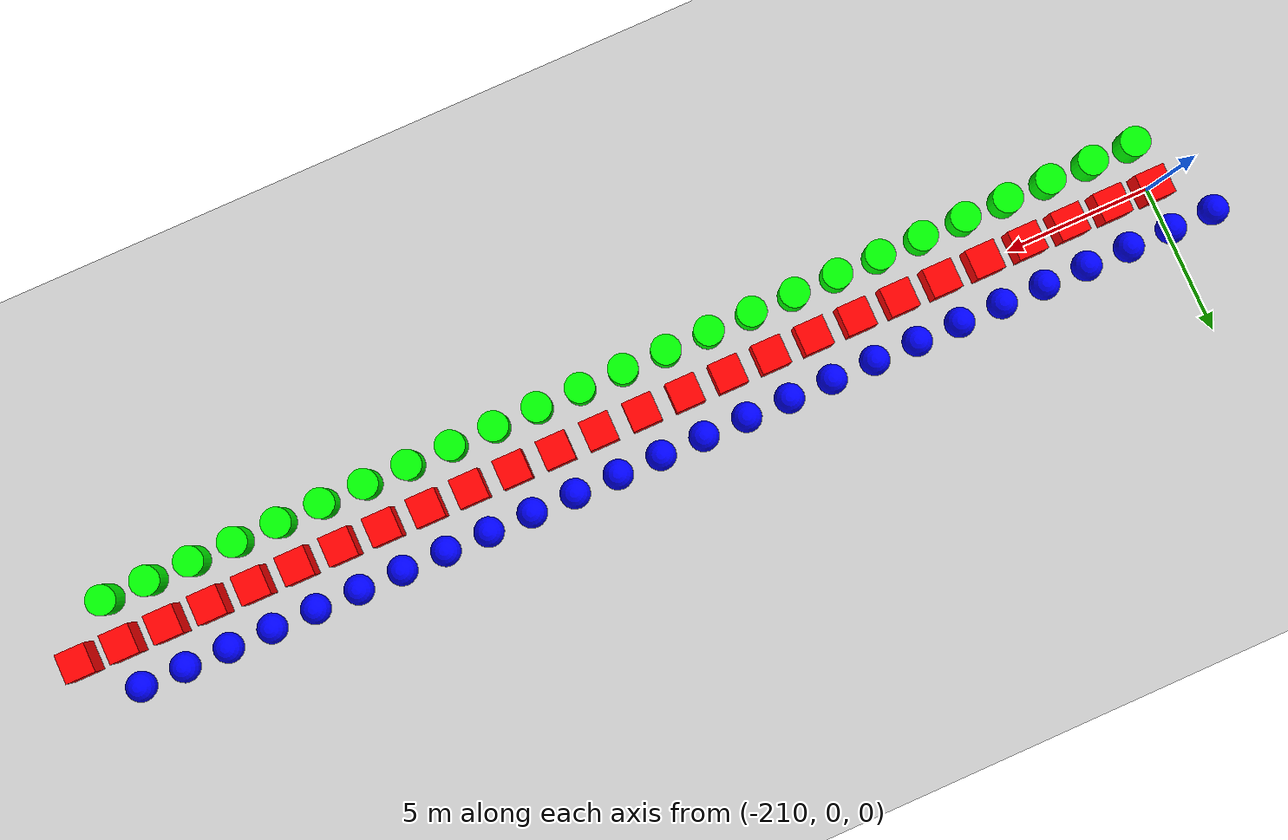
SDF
<sdf version="1.6">
 <world name="shapes">
  <model name="ground_plane">
   <static>true</static>
   <link name="link">
    <collision name="collision">
     <geometry><plane><normal>0 0 1</normal><size>100 100</size></plane></geometry>
    </collision>
    <visual name="visual">
     <geometry><plane><normal>0 0 1</normal><size>100 100</size></plane></geometry>
     <material>
      <ambient>0.8 0.8 0.8 1</ambient>
      <diffuse>0.8 0.8 0.8 1</diffuse>
      <specular>0.8 0.8 0.8 1</specular>
     </material>
    </visual>
   </link>
  </model>
  <model name="sphere_359">
   <static>false</static>
   <pose>-211.5 1.5 0.5 0 0 0</pose>
   <link name="sphere_link">
    <inertial>
     <inertia><ixx>3</ixx><ixy>0</ixy><ixz>0</ixz><iyy>3</iyy><iyz>0</iyz><izz>3</izz></inertia>
     <mass>3.0</mass>
    </inertial>
    <collision name="sphere_collision"><geometry><sphere><radius>0.5</radius></sphere></geometry></collision>
    <visual name="sphere_visual">
     <geometry><sphere><radius>0.5</radius></sphere></geometry>
     <material><ambient>0 0 1 1</ambient><diffuse>0 0 1 1</diffuse><specular>0 0 1 1</specular></material>
    </visual>
   </link>
  </model>
  <model name="box_360">
   <static>false</static>
   <pose>-210.0 0 0.5 0 0 0</pose>
   <link name="box_link">
    <inertial>
     <inertia><ixx>1</ixx><ixy>0</ixy><ixz>0</ixz><iyy>1</iyy><iyz>0</iyz><izz>1</izz></inertia>
     <mass>1.0</mass>
    </inertial>
    <collision name="box_collision"><geometry><box><size>1 1 1</size></box></geometry></collision>
    <visual name="box_visual">
     <geometry><box><size>1 1 1</size></box></geometry>
     <material><ambient>1 0 0 1</ambient><diffuse>1 0 0 1</diffuse><specular>1 0 0 1</specular></material>
    </visual>
   </link>
  </model>
  <model name="cylinder_360">
   <static>false</static>
   <pose>-210.0 -1.5 0.5 0 0 0</pose>
   <link name="cylinder_link">
    <inertial>
     <inertia><ixx>2</ixx><ixy>0</ixy><ixz>0</ixz><iyy>2</iyy><iyz>0</iyz><izz>2</izz></inertia>
     <mass>2.0</mass>
    </inertial>
    <collision name="cylinder_collision">
     <geometry><cylinder><radius>0.5</radius><length>1.0</length></cylinder></geometry>
    </collision>
    <visual name="cylinder_visual">
     <geometry><cylinder><radius>0.5</radius><length>1.0</length></cylinder></geometry>
     <material><ambient>0 1 0 1</ambient><diffuse>0 1 0 1</diffuse><specular>0 1 0 1</specular></material>
    </visual>
   </link>
  </model>
  <model name="sphere_360">
   <static>false</static>
   <pose>-210.0 1.5 0.5 0 0 0</pose>
   <link name="sphere_link">
    <inertial>
     <inertia><ixx>3</ixx><ixy>0</ixy><ixz>0</ixz><iyy>3</iyy><iyz>0</iyz><izz>3</izz></inertia>
     <mass>3.0</mass>
    </inertial>
    <collision name="sphere_collision"><geometry><sphere><radius>0.5</radius></sphere></geometry></collision>
    <visual name="sphere_visual">
     <geometry><sphere><radius>0.5</radius></sphere></geometry>
     <material><ambient>0 0 1 1</ambient><diffuse>0 0 1 1</diffuse><specular>0 0 1 1</specular></material>
    </visual>
   </link>
  </model>
  <model name="box_361">
   <static>false</static>
   <pose>-208.5 0 0.5 0 0 0</pose>
   <link name="box_link">
    <inertial>
     <inertia><ixx>1</ixx><ixy>0</ixy><ixz>0</ixz><iyy>1</iyy><iyz>0</iyz><izz>1</izz></inertia>
     <mass>1.0</mass>
    </inertial>
    <collision name="box_collision"><geometry><box><size>1 1 1</size></box></geometry></collision>
    <visual name="box_visual">
     <geometry><box><size>1 1 1</size></box></geometry>
     <material><ambient>1 0 0 1</ambient><diffuse>1 0 0 1</diffuse><specular>1 0 0 1</specular></material>
    </visual>
   </link>
  </model>
  <model name="cylinder_361">
   <static>false</static>
   <pose>-208.5 -1.5 0.5 0 0 0</pose>
   <link name="cylinder_link">
    <inertial>
     <inertia><ixx>2</ixx><ixy>0</ixy><ixz>0</ixz><iyy>2</iyy><iyz>0</iyz><izz>2</izz></inertia>
     <mass>2.0</mass>
    </inertial>
    <collision name="cylinder_collision">
     <geometry><cylinder><radius>0.5</radius><length>1.0</length></cylinder></geometry>
    </collision>
    <visual name="cylinder_visual">
     <geometry><cylinder><radius>0.5</radius><length>1.0</length></cylinder></geometry>
     <material><ambient>0 1 0 1</ambient><diffuse>0 1 0 1</diffuse><specular>0 1 0 1</specular></material>
    </visual>
   </link>
  </model>
  <model name="sphere_361">
   <static>false</static>
   <pose>-208.5 1.5 0.5 0 0 0</pose>
   <link name="sphere_link">
    <inertial>
     <inertia><ixx>3</ixx><ixy>0</ixy><ixz>0</ixz><iyy>3</iyy><iyz>0</iyz><izz>3</izz></inertia>
     <mass>3.0</mass>
    </inertial>
    <collision name="sphere_collision"><geometry><sphere><radius>0.5</radius></sphere></geometry></collision>
    <visual name="sphere_visual">
     <geometry><sphere><radius>0.5</radius></sphere></geometry>
     <material><ambient>0 0 1 1</ambient><diffuse>0 0 1 1</diffuse><specular>0 0 1 1</specular></material>
    </visual>
   </link>
  </model>
  <model name="box_362">
   <static>false</static>
   <pose>-207.0 0 0.5 0 0 0</pose>
   <link name="box_link">
    <inertial>
     <inertia><ixx>1</ixx><ixy>0</ixy><ixz>0</ixz><iyy>1</iyy><iyz>0</iyz><izz>1</izz></inertia>
     <mass>1.0</mass>
    </inertial>
    <collision name="box_collision"><geometry><box><size>1 1 1</size></box></geometry></collision>
    <visual name="box_visual">
     <geometry><box><size>1 1 1</size></box></geometry>
     <material><ambient>1 0 0 1</ambient><diffuse>1 0 0 1</diffuse><specular>1 0 0 1</specular></material>
    </visual>
   </link>
  </model>
  <model name="cylinder_362">
   <static>false</static>
   <pose>-207.0 -1.5 0.5 0 0 0</pose>
   <link name="cylinder_link">
    <inertial>
     <inertia><ixx>2</ixx><ixy>0</ixy><ixz>0</ixz><iyy>2</iyy><iyz>0</iyz><izz>2</izz></inertia>
     <mass>2.0</mass>
    </inertial>
    <collision name="cylinder_collision">
     <geometry><cylinder><radius>0.5</radius><length>1.0</length></cylinder></geometry>
    </collision>
    <visual name="cylinder_visual">
     <geometry><cylinder><radius>0.5</radius><length>1.0</length></cylinder></geometry>
     <material><ambient>0 1 0 1</ambient><diffuse>0 1 0 1</diffuse><specular>0 1 0 1</specular></material>
    </visual>
   </link>
  </model>
  <model name="sphere_362">
   <static>false</static>
   <pose>-207.0 1.5 0.5 0 0 0</pose>
   <link name="sphere_link">
    <inertial>
     <inertia><ixx>3</ixx><ixy>0</ixy><ixz>0</ixz><iyy>3</iyy><iyz>0</iyz><izz>3</izz></inertia>
     <mass>3.0</mass>
    </inertial>
    <collision name="sphere_collision"><geometry><sphere><radius>0.5</radius></sphere></geometry></collision>
    <visual name="sphere_visual">
     <geometry><sphere><radius>0.5</radius></sphere></geometry>
     <material><ambient>0 0 1 1</ambient><diffuse>0 0 1 1</diffuse><specular>0 0 1 1</specular></material>
    </visual>
   </link>
  </model>
  <model name="box_363">
   <static>false</static>
   <pose>-205.5 0 0.5 0 0 0</pose>
   <link name="box_link">
    <inertial>
     <inertia><ixx>1</ixx><ixy>0</ixy><ixz>0</ixz><iyy>1</iyy><iyz>0</iyz><izz>1</izz></inertia>
     <mass>1.0</mass>
    </inertial>
    <collision name="box_collision"><geometry><box><size>1 1 1</size></box></geometry></collision>
    <visual name="box_visual">
     <geometry><box><size>1 1 1</size></box></geometry>
     <material><ambient>1 0 0 1</ambient><diffuse>1 0 0 1</diffuse><specular>1 0 0 1</specular></material>
    </visual>
   </link>
  </model>
  <model name="cylinder_363">
   <static>false</static>
   <pose>-205.5 -1.5 0.5 0 0 0</pose>
   <link name="cylinder_link">
    <inertial>
     <inertia><ixx>2</ixx><ixy>0</ixy><ixz>0</ixz><iyy>2</iyy><iyz>0</iyz><izz>2</izz></inertia>
     <mass>2.0</mass>
    </inertial>
    <collision name="cylinder_collision">
     <geometry><cylinder><radius>0.5</radius><length>1.0</length></cylinder></geometry>
    </collision>
    <visual name="cylinder_visual">
     <geometry><cylinder><radius>0.5</radius><length>1.0</length></cylinder></geometry>
     <material><ambient>0 1 0 1</ambient><diffuse>0 1 0 1</diffuse><specular>0 1 0 1</specular></material>
    </visual>
   </link>
  </model>
  <model name="sphere_363">
   <static>false</static>
   <pose>-205.5 1.5 0.5 0 0 0</pose>
   <link name="sphere_link">
    <inertial>
     <inertia><ixx>3</ixx><ixy>0</ixy><ixz>0</ixz><iyy>3</iyy><iyz>0</iyz><izz>3</izz></inertia>
     <mass>3.0</mass>
    </inertial>
    <collision name="sphere_collision"><geometry><sphere><radius>0.5</radius></sphere></geometry></collision>
    <visual name="sphere_visual">
     <geometry><sphere><radius>0.5</radius></sphere></geometry>
     <material><ambient>0 0 1 1</ambient><diffuse>0 0 1 1</diffuse><specular>0 0 1 1</specular></material>
    </visual>
   </link>
  </model>
  <model name="box_364">
   <static>false</static>
   <pose>-204.0 0 0.5 0 0 0</pose>
   <link name="box_link">
    <inertial>
     <inertia><ixx>1</ixx><ixy>0</ixy><ixz>0</ixz><iyy>1</iyy><iyz>0</iyz><izz>1</izz></inertia>
     <mass>1.0</mass>
    </inertial>
    <collision name="box_collision"><geometry><box><size>1 1 1</size></box></geometry></collision>
    <visual name="box_visual">
     <geometry><box><size>1 1 1</size></box></geometry>
     <material><ambient>1 0 0 1</ambient><diffuse>1 0 0 1</diffuse><specular>1 0 0 1</specular></material>
    </visual>
   </link>
  </model>
  <model name="cylinder_364">
   <static>false</static>
   <pose>-204.0 -1.5 0.5 0 0 0</pose>
   <link name="cylinder_link">
    <inertial>
     <inertia><ixx>2</ixx><ixy>0</ixy><ixz>0</ixz><iyy>2</iyy><iyz>0</iyz><izz>2</izz></inertia>
     <mass>2.0</mass>
    </inertial>
    <collision name="cylinder_collision">
     <geometry><cylinder><radius>0.5</radius><length>1.0</length></cylinder></geometry>
    </collision>
    <visual name="cylinder_visual">
     <geometry><cylinder><radius>0.5</radius><length>1.0</length></cylinder></geometry>
     <material><ambient>0 1 0 1</ambient><diffuse>0 1 0 1</diffuse><specular>0 1 0 1</specular></material>
    </visual>
   </link>
  </model>
  <model name="sphere_364">
   <static>false</static>
   <pose>-204.0 1.5 0.5 0 0 0</pose>
   <link name="sphere_link">
    <inertial>
     <inertia><ixx>3</ixx><ixy>0</ixy><ixz>0</ixz><iyy>3</iyy><iyz>0</iyz><izz>3</izz></inertia>
     <mass>3.0</mass>
    </inertial>
    <collision name="sphere_collision"><geometry><sphere><radius>0.5</radius></sphere></geometry></collision>
    <visual name="sphere_visual">
     <geometry><sphere><radius>0.5</radius></sphere></geometry>
     <material><ambient>0 0 1 1</ambient><diffuse>0 0 1 1</diffuse><specular>0 0 1 1</specular></material>
    </visual>
   </link>
  </model>
  <model name="box_365">
   <static>false</static>
   <pose>-202.5 0 0.5 0 0 0</pose>
   <link name="box_link">
    <inertial>
     <inertia><ixx>1</ixx><ixy>0</ixy><ixz>0</ixz><iyy>1</iyy><iyz>0</iyz><izz>1</izz></inertia>
     <mass>1.0</mass>
    </inertial>
    <collision name="box_collision"><geometry><box><size>1 1 1</size></box></geometry></collision>
    <visual name="box_visual">
     <geometry><box><size>1 1 1</size></box></geometry>
     <material><ambient>1 0 0 1</ambient><diffuse>1 0 0 1</diffuse><specular>1 0 0 1</specular></material>
    </visual>
   </link>
  </model>
  <model name="cylinder_365">
   <static>false</static>
   <pose>-202.5 -1.5 0.5 0 0 0</pose>
   <link name="cylinder_link">
    <inertial>
     <inertia><ixx>2</ixx><ixy>0</ixy><ixz>0</ixz><iyy>2</iyy><iyz>0</iyz><izz>2</izz></inertia>
     <mass>2.0</mass>
    </inertial>
    <collision name="cylinder_collision">
     <geometry><cylinder><radius>0.5</radius><length>1.0</length></cylinder></geometry>
    </collision>
    <visual name="cylinder_visual">
     <geometry><cylinder><radius>0.5</radius><length>1.0</length></cylinder></geometry>
     <material><ambient>0 1 0 1</ambient><diffuse>0 1 0 1</diffuse><specular>0 1 0 1</specular></material>
    </visual>
   </link>
  </model>
  <model name="sphere_365">
   <static>false</static>
   <pose>-202.5 1.5 0.5 0 0 0</pose>
   <link name="sphere_link">
    <inertial>
     <inertia><ixx>3</ixx><ixy>0</ixy><ixz>0</ixz><iyy>3</iyy><iyz>0</iyz><izz>3</izz></inertia>
     <mass>3.0</mass>
    </inertial>
    <collision name="sphere_collision"><geometry><sphere><radius>0.5</radius></sphere></geometry></collision>
    <visual name="sphere_visual">
     <geometry><sphere><radius>0.5</radius></sphere></geometry>
     <material><ambient>0 0 1 1</ambient><diffuse>0 0 1 1</diffuse><specular>0 0 1 1</specular></material>
    </visual>
   </link>
  </model>
  <model name="box_366">
   <static>false</static>
   <pose>-201.0 0 0.5 0 0 0</pose>
   <link name="box_link">
    <inertial>
     <inertia><ixx>1</ixx><ixy>0</ixy><ixz>0</ixz><iyy>1</iyy><iyz>0</iyz><izz>1</izz></inertia>
     <mass>1.0</mass>
    </inertial>
    <collision name="box_collision"><geometry><box><size>1 1 1</size></box></geometry></collision>
    <visual name="box_visual">
     <geometry><box><size>1 1 1</size></box></geometry>
     <material><ambient>1 0 0 1</ambient><diffuse>1 0 0 1</diffuse><specular>1 0 0 1</specular></material>
    </visual>
   </link>
  </model>
  <model name="cylinder_366">
   <static>false</static>
   <pose>-201.0 -1.5 0.5 0 0 0</pose>
   <link name="cylinder_link">
    <inertial>
     <inertia><ixx>2</ixx><ixy>0</ixy><ixz>0</ixz><iyy>2</iyy><iyz>0</iyz><izz>2</izz></inertia>
     <mass>2.0</mass>
    </inertial>
    <collision name="cylinder_collision">
     <geometry><cylinder><radius>0.5</radius><length>1.0</length></cylinder></geometry>
    </collision>
    <visual name="cylinder_visual">
     <geometry><cylinder><radius>0.5</radius><length>1.0</length></cylinder></geometry>
     <material><ambient>0 1 0 1</ambient><diffuse>0 1 0 1</diffuse><specular>0 1 0 1</specular></material>
    </visual>
   </link>
  </model>
  <model name="sphere_366">
   <static>false</static>
   <pose>-201.0 1.5 0.5 0 0 0</pose>
   <link name="sphere_link">
    <inertial>
     <inertia><ixx>3</ixx><ixy>0</ixy><ixz>0</ixz><iyy>3</iyy><iyz>0</iyz><izz>3</izz></inertia>
     <mass>3.0</mass>
    </inertial>
    <collision name="sphere_collision"><geometry><sphere><radius>0.5</radius></sphere></geometry></collision>
    <visual name="sphere_visual">
     <geometry><sphere><radius>0.5</radius></sphere></geometry>
     <material><ambient>0 0 1 1</ambient><diffuse>0 0 1 1</diffuse><specular>0 0 1 1</specular></material>
    </visual>
   </link>
  </model>
  <model name="box_367">
   <static>false</static>
   <pose>-199.5 0 0.5 0 0 0</pose>
   <link name="box_link">
    <inertial>
     <inertia><ixx>1</ixx><ixy>0</ixy><ixz>0</ixz><iyy>1</iyy><iyz>0</iyz><izz>1</izz></inertia>
     <mass>1.0</mass>
    </inertial>
    <collision name="box_collision"><geometry><box><size>1 1 1</size></box></geometry></collision>
    <visual name="box_visual">
     <geometry><box><size>1 1 1</size></box></geometry>
     <material><ambient>1 0 0 1</ambient><diffuse>1 0 0 1</diffuse><specular>1 0 0 1</specular></material>
    </visual>
   </link>
  </model>
  <model name="cylinder_367">
   <static>false</static>
   <pose>-199.5 -1.5 0.5 0 0 0</pose>
   <link name="cylinder_link">
    <inertial>
     <inertia><ixx>2</ixx><ixy>0</ixy><ixz>0</ixz><iyy>2</iyy><iyz>0</iyz><izz>2</izz></inertia>
     <mass>2.0</mass>
    </inertial>
    <collision name="cylinder_collision">
     <geometry><cylinder><radius>0.5</radius><length>1.0</length></cylinder></geometry>
    </collision>
    <visual name="cylinder_visual">
     <geometry><cylinder><radius>0.5</radius><length>1.0</length></cylinder></geometry>
     <material><ambient>0 1 0 1</ambient><diffuse>0 1 0 1</diffuse><specular>0 1 0 1</specular></material>
    </visual>
   </link>
  </model>
  <model name="sphere_367">
   <static>false</static>
   <pose>-199.5 1.5 0.5 0 0 0</pose>
   <link name="sphere_link">
    <inertial>
     <inertia><ixx>3</ixx><ixy>0</ixy><ixz>0</ixz><iyy>3</iyy><iyz>0</iyz><izz>3</izz></inertia>
     <mass>3.0</mass>
    </inertial>
    <collision name="sphere_collision"><geometry><sphere><radius>0.5</radius></sphere></geometry></collision>
    <visual name="sphere_visual">
     <geometry><sphere><radius>0.5</radius></sphere></geometry>
     <material><ambient>0 0 1 1</ambient><diffuse>0 0 1 1</diffuse><specular>0 0 1 1</specular></material>
    </visual>
   </link>
  </model>
  <model name="box_368">
   <static>false</static>
   <pose>-198.0 0 0.5 0 0 0</pose>
   <link name="box_link">
    <inertial>
     <inertia><ixx>1</ixx><ixy>0</ixy><ixz>0</ixz><iyy>1</iyy><iyz>0</iyz><izz>1</izz></inertia>
     <mass>1.0</mass>
    </inertial>
    <collision name="box_collision"><geometry><box><size>1 1 1</size></box></geometry></collision>
    <visual name="box_visual">
     <geometry><box><size>1 1 1</size></box></geometry>
     <material><ambient>1 0 0 1</ambient><diffuse>1 0 0 1</diffuse><specular>1 0 0 1</specular></material>
    </visual>
   </link>
  </model>
  <model name="cylinder_368">
   <static>false</static>
   <pose>-198.0 -1.5 0.5 0 0 0</pose>
   <link name="cylinder_link">
    <inertial>
     <inertia><ixx>2</ixx><ixy>0</ixy><ixz>0</ixz><iyy>2</iyy><iyz>0</iyz><izz>2</izz></inertia>
     <mass>2.0</mass>
    </inertial>
    <collision name="cylinder_collision">
     <geometry><cylinder><radius>0.5</radius><length>1.0</length></cylinder></geometry>
    </collision>
    <visual name="cylinder_visual">
     <geometry><cylinder><radius>0.5</radius><length>1.0</length></cylinder></geometry>
     <material><ambient>0 1 0 1</ambient><diffuse>0 1 0 1</diffuse><specular>0 1 0 1</specular></material>
    </visual>
   </link>
  </model>
  <model name="sphere_368">
   <static>false</static>
   <pose>-198.0 1.5 0.5 0 0 0</pose>
   <link name="sphere_link">
    <inertial>
     <inertia><ixx>3</ixx><ixy>0</ixy><ixz>0</ixz><iyy>3</iyy><iyz>0</iyz><izz>3</izz></inertia>
     <mass>3.0</mass>
    </inertial>
    <collision name="sphere_collision"><geometry><sphere><radius>0.5</radius></sphere></geometry></collision>
    <visual name="sphere_visual">
     <geometry><sphere><radius>0.5</radius></sphere></geometry>
     <material><ambient>0 0 1 1</ambient><diffuse>0 0 1 1</diffuse><specular>0 0 1 1</specular></material>
    </visual>
   </link>
  </model>
  <model name="box_369">
   <static>false</static>
   <pose>-196.5 0 0.5 0 0 0</pose>
   <link name="box_link">
    <inertial>
     <inertia><ixx>1</ixx><ixy>0</ixy><ixz>0</ixz><iyy>1</iyy><iyz>0</iyz><izz>1</izz></inertia>
     <mass>1.0</mass>
    </inertial>
    <collision name="box_collision"><geometry><box><size>1 1 1</size></box></geometry></collision>
    <visual name="box_visual">
     <geometry><box><size>1 1 1</size></box></geometry>
     <material><ambient>1 0 0 1</ambient><diffuse>1 0 0 1</diffuse><specular>1 0 0 1</specular></material>
    </visual>
   </link>
  </model>
  <model name="cylinder_369">
   <static>false</static>
   <pose>-196.5 -1.5 0.5 0 0 0</pose>
   <link name="cylinder_link">
    <inertial>
     <inertia><ixx>2</ixx><ixy>0</ixy><ixz>0</ixz><iyy>2</iyy><iyz>0</iyz><izz>2</izz></inertia>
     <mass>2.0</mass>
    </inertial>
    <collision name="cylinder_collision">
     <geometry><cylinder><radius>0.5</radius><length>1.0</length></cylinder></geometry>
    </collision>
    <visual name="cylinder_visual">
     <geometry><cylinder><radius>0.5</radius><length>1.0</length></cylinder></geometry>
     <material><ambient>0 1 0 1</ambient><diffuse>0 1 0 1</diffuse><specular>0 1 0 1</specular></material>
    </visual>
   </link>
  </model>
  <model name="sphere_369">
   <static>false</static>
   <pose>-196.5 1.5 0.5 0 0 0</pose>
   <link name="sphere_link">
    <inertial>
     <inertia><ixx>3</ixx><ixy>0</ixy><ixz>0</ixz><iyy>3</iyy><iyz>0</iyz><izz>3</izz></inertia>
     <mass>3.0</mass>
    </inertial>
    <collision name="sphere_collision"><geometry><sphere><radius>0.5</radius></sphere></geometry></collision>
    <visual name="sphere_visual">
     <geometry><sphere><radius>0.5</radius></sphere></geometry>
     <material><ambient>0 0 1 1</ambient><diffuse>0 0 1 1</diffuse><specular>0 0 1 1</specular></material>
    </visual>
   </link>
  </model>
  <model name="box_370">
   <static>false</static>
   <pose>-195.0 0 0.5 0 0 0</pose>
   <link name="box_link">
    <inertial>
     <inertia><ixx>1</ixx><ixy>0</ixy><ixz>0</ixz><iyy>1</iyy><iyz>0</iyz><izz>1</izz></inertia>
     <mass>1.0</mass>
    </inertial>
    <collision name="box_collision"><geometry><box><size>1 1 1</size></box></geometry></collision>
    <visual name="box_visual">
     <geometry><box><size>1 1 1</size></box></geometry>
     <material><ambient>1 0 0 1</ambient><diffuse>1 0 0 1</diffuse><specular>1 0 0 1</specular></material>
    </visual>
   </link>
  </model>
  <model name="cylinder_370">
   <static>false</static>
   <pose>-195.0 -1.5 0.5 0 0 0</pose>
   <link name="cylinder_link">
    <inertial>
     <inertia><ixx>2</ixx><ixy>0</ixy><ixz>0</ixz><iyy>2</iyy><iyz>0</iyz><izz>2</izz></inertia>
     <mass>2.0</mass>
    </inertial>
    <collision name="cylinder_collision">
     <geometry><cylinder><radius>0.5</radius><length>1.0</length></cylinder></geometry>
    </collision>
    <visual name="cylinder_visual">
     <geometry><cylinder><radius>0.5</radius><length>1.0</length></cylinder></geometry>
     <material><ambient>0 1 0 1</ambient><diffuse>0 1 0 1</diffuse><specular>0 1 0 1</specular></material>
    </visual>
   </link>
  </model>
  <model name="sphere_370">
   <static>false</static>
   <pose>-195.0 1.5 0.5 0 0 0</pose>
   <link name="sphere_link">
    <inertial>
     <inertia><ixx>3</ixx><ixy>0</ixy><ixz>0</ixz><iyy>3</iyy><iyz>0</iyz><izz>3</izz></inertia>
     <mass>3.0</mass>
    </inertial>
    <collision name="sphere_collision"><geometry><sphere><radius>0.5</radius></sphere></geometry></collision>
    <visual name="sphere_visual">
     <geometry><sphere><radius>0.5</radius></sphere></geometry>
     <material><ambient>0 0 1 1</ambient><diffuse>0 0 1 1</diffuse><specular>0 0 1 1</specular></material>
    </visual>
   </link>
  </model>
  <model name="box_371">
   <static>false</static>
   <pose>-193.5 0 0.5 0 0 0</pose>
   <link name="box_link">
    <inertial>
     <inertia><ixx>1</ixx><ixy>0</ixy><ixz>0</ixz><iyy>1</iyy><iyz>0</iyz><izz>1</izz></inertia>
     <mass>1.0</mass>
    </inertial>
    <collision name="box_collision"><geometry><box><size>1 1 1</size></box></geometry></collision>
    <visual name="box_visual">
     <geometry><box><size>1 1 1</size></box></geometry>
     <material><ambient>1 0 0 1</ambient><diffuse>1 0 0 1</diffuse><specular>1 0 0 1</specular></material>
    </visual>
   </link>
  </model>
  <model name="cylinder_371">
   <static>false</static>
   <pose>-193.5 -1.5 0.5 0 0 0</pose>
   <link name="cylinder_link">
    <inertial>
     <inertia><ixx>2</ixx><ixy>0</ixy><ixz>0</ixz><iyy>2</iyy><iyz>0</iyz><izz>2</izz></inertia>
     <mass>2.0</mass>
    </inertial>
    <collision name="cylinder_collision">
     <geometry><cylinder><radius>0.5</radius><length>1.0</length></cylinder></geometry>
    </collision>
    <visual name="cylinder_visual">
     <geometry><cylinder><radius>0.5</radius><length>1.0</length></cylinder></geometry>
     <material><ambient>0 1 0 1</ambient><diffuse>0 1 0 1</diffuse><specular>0 1 0 1</specular></material>
    </visual>
   </link>
  </model>
  <model name="sphere_371">
   <static>false</static>
   <pose>-193.5 1.5 0.5 0 0 0</pose>
   <link name="sphere_link">
    <inertial>
     <inertia><ixx>3</ixx><ixy>0</ixy><ixz>0</ixz><iyy>3</iyy><iyz>0</iyz><izz>3</izz></inertia>
     <mass>3.0</mass>
    </inertial>
    <collision name="sphere_collision"><geometry><sphere><radius>0.5</radius></sphere></geometry></collision>
    <visual name="sphere_visual">
     <geometry><sphere><radius>0.5</radius></sphere></geometry>
     <material><ambient>0 0 1 1</ambient><diffuse>0 0 1 1</diffuse><specular>0 0 1 1</specular></material>
    </visual>
   </link>
  </model>
  <model name="box_372">
   <static>false</static>
   <pose>-192.0 0 0.5 0 0 0</pose>
   <link name="box_link">
    <inertial>
     <inertia><ixx>1</ixx><ixy>0</ixy><ixz>0</ixz><iyy>1</iyy><iyz>0</iyz><izz>1</izz></inertia>
     <mass>1.0</mass>
    </inertial>
    <collision name="box_collision"><geometry><box><size>1 1 1</size></box></geometry></collision>
    <visual name="box_visual">
     <geometry><box><size>1 1 1</size></box></geometry>
     <material><ambient>1 0 0 1</ambient><diffuse>1 0 0 1</diffuse><specular>1 0 0 1</specular></material>
    </visual>
   </link>
  </model>
  <model name="cylinder_372">
   <static>false</static>
   <pose>-192.0 -1.5 0.5 0 0 0</pose>
   <link name="cylinder_link">
    <inertial>
     <inertia><ixx>2</ixx><ixy>0</ixy><ixz>0</ixz><iyy>2</iyy><iyz>0</iyz><izz>2</izz></inertia>
     <mass>2.0</mass>
    </inertial>
    <collision name="cylinder_collision">
     <geometry><cylinder><radius>0.5</radius><length>1.0</length></cylinder></geometry>
    </collision>
    <visual name="cylinder_visual">
     <geometry><cylinder><radius>0.5</radius><length>1.0</length></cylinder></geometry>
     <material><ambient>0 1 0 1</ambient><diffuse>0 1 0 1</diffuse><specular>0 1 0 1</specular></material>
    </visual>
   </link>
  </model>
  <model name="sphere_372">
   <static>false</static>
   <pose>-192.0 1.5 0.5 0 0 0</pose>
   <link name="sphere_link">
    <inertial>
     <inertia><ixx>3</ixx><ixy>0</ixy><ixz>0</ixz><iyy>3</iyy><iyz>0</iyz><izz>3</izz></inertia>
     <mass>3.0</mass>
    </inertial>
    <collision name="sphere_collision"><geometry><sphere><radius>0.5</radius></sphere></geometry></collision>
    <visual name="sphere_visual">
     <geometry><sphere><radius>0.5</radius></sphere></geometry>
     <material><ambient>0 0 1 1</ambient><diffuse>0 0 1 1</diffuse><specular>0 0 1 1</specular></material>
    </visual>
   </link>
  </model>
  <model name="box_373">
   <static>false</static>
   <pose>-190.5 0 0.5 0 0 0</pose>
   <link name="box_link">
    <inertial>
     <inertia><ixx>1</ixx><ixy>0</ixy><ixz>0</ixz><iyy>1</iyy><iyz>0</iyz><izz>1</izz></inertia>
     <mass>1.0</mass>
    </inertial>
    <collision name="box_collision"><geometry><box><size>1 1 1</size></box></geometry></collision>
    <visual name="box_visual">
     <geometry><box><size>1 1 1</size></box></geometry>
     <material><ambient>1 0 0 1</ambient><diffuse>1 0 0 1</diffuse><specular>1 0 0 1</specular></material>
    </visual>
   </link>
  </model>
  <model name="cylinder_373">
   <static>false</static>
   <pose>-190.5 -1.5 0.5 0 0 0</pose>
   <link name="cylinder_link">
    <inertial>
     <inertia><ixx>2</ixx><ixy>0</ixy><ixz>0</ixz><iyy>2</iyy><iyz>0</iyz><izz>2</izz></inertia>
     <mass>2.0</mass>
    </inertial>
    <collision name="cylinder_collision">
     <geometry><cylinder><radius>0.5</radius><length>1.0</length></cylinder></geometry>
    </collision>
    <visual name="cylinder_visual">
     <geometry><cylinder><radius>0.5</radius><length>1.0</length></cylinder></geometry>
     <material><ambient>0 1 0 1</ambient><diffuse>0 1 0 1</diffuse><specular>0 1 0 1</specular></material>
    </visual>
   </link>
  </model>
  <model name="sphere_373">
   <static>false</static>
   <pose>-190.5 1.5 0.5 0 0 0</pose>
   <link name="sphere_link">
    <inertial>
     <inertia><ixx>3</ixx><ixy>0</ixy><ixz>0</ixz><iyy>3</iyy><iyz>0</iyz><izz>3</izz></inertia>
     <mass>3.0</mass>
    </inertial>
    <collision name="sphere_collision"><geometry><sphere><radius>0.5</radius></sphere></geometry></collision>
    <visual name="sphere_visual">
     <geometry><sphere><radius>0.5</radius></sphere></geometry>
     <material><ambient>0 0 1 1</ambient><diffuse>0 0 1 1</diffuse><specular>0 0 1 1</specular></material>
    </visual>
   </link>
  </model>
  <model name="box_374">
   <static>false</static>
   <pose>-189.0 0 0.5 0 0 0</pose>
   <link name="box_link">
    <inertial>
     <inertia><ixx>1</ixx><ixy>0</ixy><ixz>0</ixz><iyy>1</iyy><iyz>0</iyz><izz>1</izz></inertia>
     <mass>1.0</mass>
    </inertial>
    <collision name="box_collision"><geometry><box><size>1 1 1</size></box></geometry></collision>
    <visual name="box_visual">
     <geometry><box><size>1 1 1</size></box></geometry>
     <material><ambient>1 0 0 1</ambient><diffuse>1 0 0 1</diffuse><specular>1 0 0 1</specular></material>
    </visual>
   </link>
  </model>
  <model name="cylinder_374">
   <static>false</static>
   <pose>-189.0 -1.5 0.5 0 0 0</pose>
   <link name="cylinder_link">
    <inertial>
     <inertia><ixx>2</ixx><ixy>0</ixy><ixz>0</ixz><iyy>2</iyy><iyz>0</iyz><izz>2</izz></inertia>
     <mass>2.0</mass>
    </inertial>
    <collision name="cylinder_collision">
     <geometry><cylinder><radius>0.5</radius><length>1.0</length></cylinder></geometry>
    </collision>
    <visual name="cylinder_visual">
     <geometry><cylinder><radius>0.5</radius><length>1.0</length></cylinder></geometry>
     <material><ambient>0 1 0 1</ambient><diffuse>0 1 0 1</diffuse><specular>0 1 0 1</specular></material>
    </visual>
   </link>
  </model>
  <model name="sphere_374">
   <static>false</static>
   <pose>-189.0 1.5 0.5 0 0 0</pose>
   <link name="sphere_link">
    <inertial>
     <inertia><ixx>3</ixx><ixy>0</ixy><ixz>0</ixz><iyy>3</iyy><iyz>0</iyz><izz>3</izz></inertia>
     <mass>3.0</mass>
    </inertial>
    <collision name="sphere_collision"><geometry><sphere><radius>0.5</radius></sphere></geometry></collision>
    <visual name="sphere_visual">
     <geometry><sphere><radius>0.5</radius></sphere></geometry>
     <material><ambient>0 0 1 1</ambient><diffuse>0 0 1 1</diffuse><specular>0 0 1 1</specular></material>
    </visual>
   </link>
  </model>
  <model name="box_375">
   <static>false</static>
   <pose>-187.5 0 0.5 0 0 0</pose>
   <link name="box_link">
    <inertial>
     <inertia><ixx>1</ixx><ixy>0</ixy><ixz>0</ixz><iyy>1</iyy><iyz>0</iyz><izz>1</izz></inertia>
     <mass>1.0</mass>
    </inertial>
    <collision name="box_collision"><geometry><box><size>1 1 1</size></box></geometry></collision>
    <visual name="box_visual">
     <geometry><box><size>1 1 1</size></box></geometry>
     <material><ambient>1 0 0 1</ambient><diffuse>1 0 0 1</diffuse><specular>1 0 0 1</specular></material>
    </visual>
   </link>
  </model>
  <model name="cylinder_375">
   <static>false</static>
   <pose>-187.5 -1.5 0.5 0 0 0</pose>
   <link name="cylinder_link">
    <inertial>
     <inertia><ixx>2</ixx><ixy>0</ixy><ixz>0</ixz><iyy>2</iyy><iyz>0</iyz><izz>2</izz></inertia>
     <mass>2.0</mass>
    </inertial>
    <collision name="cylinder_collision">
     <geometry><cylinder><radius>0.5</radius><length>1.0</length></cylinder></geometry>
    </collision>
    <visual name="cylinder_visual">
     <geometry><cylinder><radius>0.5</radius><length>1.0</length></cylinder></geometry>
     <material><ambient>0 1 0 1</ambient><diffuse>0 1 0 1</diffuse><specular>0 1 0 1</specular></material>
    </visual>
   </link>
  </model>
  <model name="sphere_375">
   <static>false</static>
   <pose>-187.5 1.5 0.5 0 0 0</pose>
   <link name="sphere_link">
    <inertial>
     <inertia><ixx>3</ixx><ixy>0</ixy><ixz>0</ixz><iyy>3</iyy><iyz>0</iyz><izz>3</izz></inertia>
     <mass>3.0</mass>
    </inertial>
    <collision name="sphere_collision"><geometry><sphere><radius>0.5</radius></sphere></geometry></collision>
    <visual name="sphere_visual">
     <geometry><sphere><radius>0.5</radius></sphere></geometry>
     <material><ambient>0 0 1 1</ambient><diffuse>0 0 1 1</diffuse><specular>0 0 1 1</specular></material>
    </visual>
   </link>
  </model>
  <model name="box_376">
   <static>false</static>
   <pose>-186.0 0 0.5 0 0 0</pose>
   <link name="box_link">
    <inertial>
     <inertia><ixx>1</ixx><ixy>0</ixy><ixz>0</ixz><iyy>1</iyy><iyz>0</iyz><izz>1</izz></inertia>
     <mass>1.0</mass>
    </inertial>
    <collision name="box_collision"><geometry><box><size>1 1 1</size></box></geometry></collision>
    <visual name="box_visual">
     <geometry><box><size>1 1 1</size></box></geometry>
     <material><ambient>1 0 0 1</ambient><diffuse>1 0 0 1</diffuse><specular>1 0 0 1</specular></material>
    </visual>
   </link>
  </model>
  <model name="cylinder_376">
   <static>false</static>
   <pose>-186.0 -1.5 0.5 0 0 0</pose>
   <link name="cylinder_link">
    <inertial>
     <inertia><ixx>2</ixx><ixy>0</ixy><ixz>0</ixz><iyy>2</iyy><iyz>0</iyz><izz>2</izz></inertia>
     <mass>2.0</mass>
    </inertial>
    <collision name="cylinder_collision">
     <geometry><cylinder><radius>0.5</radius><length>1.0</length></cylinder></geometry>
    </collision>
    <visual name="cylinder_visual">
     <geometry><cylinder><radius>0.5</radius><length>1.0</length></cylinder></geometry>
     <material><ambient>0 1 0 1</ambient><diffuse>0 1 0 1</diffuse><specular>0 1 0 1</specular></material>
    </visual>
   </link>
  </model>
  <model name="sphere_376">
   <static>false</static>
   <pose>-186.0 1.5 0.5 0 0 0</pose>
   <link name="sphere_link">
    <inertial>
     <inertia><ixx>3</ixx><ixy>0</ixy><ixz>0</ixz><iyy>3</iyy><iyz>0</iyz><izz>3</izz></inertia>
     <mass>3.0</mass>
    </inertial>
    <collision name="sphere_collision"><geometry><sphere><radius>0.5</radius></sphere></geometry></collision>
    <visual name="sphere_visual">
     <geometry><sphere><radius>0.5</radius></sphere></geometry>
     <material><ambient>0 0 1 1</ambient><diffuse>0 0 1 1</diffuse><specular>0 0 1 1</specular></material>
    </visual>
   </link>
  </model>
  <model name="box_377">
   <static>false</static>
   <pose>-184.5 0 0.5 0 0 0</pose>
   <link name="box_link">
    <inertial>
     <inertia><ixx>1</ixx><ixy>0</ixy><ixz>0</ixz><iyy>1</iyy><iyz>0</iyz><izz>1</izz></inertia>
     <mass>1.0</mass>
    </inertial>
    <collision name="box_collision"><geometry><box><size>1 1 1</size></box></geometry></collision>
    <visual name="box_visual">
     <geometry><box><size>1 1 1</size></box></geometry>
     <material><ambient>1 0 0 1</ambient><diffuse>1 0 0 1</diffuse><specular>1 0 0 1</specular></material>
    </visual>
   </link>
  </model>
  <model name="cylinder_377">
   <static>false</static>
   <pose>-184.5 -1.5 0.5 0 0 0</pose>
   <link name="cylinder_link">
    <inertial>
     <inertia><ixx>2</ixx><ixy>0</ixy><ixz>0</ixz><iyy>2</iyy><iyz>0</iyz><izz>2</izz></inertia>
     <mass>2.0</mass>
    </inertial>
    <collision name="cylinder_collision">
     <geometry><cylinder><radius>0.5</radius><length>1.0</length></cylinder></geometry>
    </collision>
    <visual name="cylinder_visual">
     <geometry><cylinder><radius>0.5</radius><length>1.0</length></cylinder></geometry>
     <material><ambient>0 1 0 1</ambient><diffuse>0 1 0 1</diffuse><specular>0 1 0 1</specular></material>
    </visual>
   </link>
  </model>
  <model name="sphere_377">
   <static>false</static>
   <pose>-184.5 1.5 0.5 0 0 0</pose>
   <link name="sphere_link">
    <inertial>
     <inertia><ixx>3</ixx><ixy>0</ixy><ixz>0</ixz><iyy>3</iyy><iyz>0</iyz><izz>3</izz></inertia>
     <mass>3.0</mass>
    </inertial>
    <collision name="sphere_collision"><geometry><sphere><radius>0.5</radius></sphere></geometry></collision>
    <visual name="sphere_visual">
     <geometry><sphere><radius>0.5</radius></sphere></geometry>
     <material><ambient>0 0 1 1</ambient><diffuse>0 0 1 1</diffuse><specular>0 0 1 1</specular></material>
    </visual>
   </link>
  </model>
  <model name="box_378">
   <static>false</static>
   <pose>-183.0 0 0.5 0 0 0</pose>
   <link name="box_link">
    <inertial>
     <inertia><ixx>1</ixx><ixy>0</ixy><ixz>0</ixz><iyy>1</iyy><iyz>0</iyz><izz>1</izz></inertia>
     <mass>1.0</mass>
    </inertial>
    <collision name="box_collision"><geometry><box><size>1 1 1</size></box></geometry></collision>
    <visual name="box_visual">
     <geometry><box><size>1 1 1</size></box></geometry>
     <material><ambient>1 0 0 1</ambient><diffuse>1 0 0 1</diffuse><specular>1 0 0 1</specular></material>
    </visual>
   </link>
  </model>
  <model name="cylinder_378">
   <static>false</static>
   <pose>-183.0 -1.5 0.5 0 0 0</pose>
   <link name="cylinder_link">
    <inertial>
     <inertia><ixx>2</ixx><ixy>0</ixy><ixz>0</ixz><iyy>2</iyy><iyz>0</iyz><izz>2</izz></inertia>
     <mass>2.0</mass>
    </inertial>
    <collision name="cylinder_collision">
     <geometry><cylinder><radius>0.5</radius><length>1.0</length></cylinder></geometry>
    </collision>
    <visual name="cylinder_visual">
     <geometry><cylinder><radius>0.5</radius><length>1.0</length></cylinder></geometry>
     <material><ambient>0 1 0 1</ambient><diffuse>0 1 0 1</diffuse><specular>0 1 0 1</specular></material>
    </visual>
   </link>
  </model>
  <model name="sphere_378">
   <static>false</static>
   <pose>-183.0 1.5 0.5 0 0 0</pose>
   <link name="sphere_link">
    <inertial>
     <inertia><ixx>3</ixx><ixy>0</ixy><ixz>0</ixz><iyy>3</iyy><iyz>0</iyz><izz>3</izz></inertia>
     <mass>3.0</mass>
    </inertial>
    <collision name="sphere_collision"><geometry><sphere><radius>0.5</radius></sphere></geometry></collision>
    <visual name="sphere_visual">
     <geometry><sphere><radius>0.5</radius></sphere></geometry>
     <material><ambient>0 0 1 1</ambient><diffuse>0 0 1 1</diffuse><specular>0 0 1 1</specular></material>
    </visual>
   </link>
  </model>
  <model name="box_379">
   <static>false</static>
   <pose>-181.5 0 0.5 0 0 0</pose>
   <link name="box_link">
    <inertial>
     <inertia><ixx>1</ixx><ixy>0</ixy><ixz>0</ixz><iyy>1</iyy><iyz>0</iyz><izz>1</izz></inertia>
     <mass>1.0</mass>
    </inertial>
    <collision name="box_collision"><geometry><box><size>1 1 1</size></box></geometry></collision>
    <visual name="box_visual">
     <geometry><box><size>1 1 1</size></box></geometry>
     <material><ambient>1 0 0 1</ambient><diffuse>1 0 0 1</diffuse><specular>1 0 0 1</specular></material>
    </visual>
   </link>
  </model>
  <model name="cylinder_379">
   <static>false</static>
   <pose>-181.5 -1.5 0.5 0 0 0</pose>
   <link name="cylinder_link">
    <inertial>
     <inertia><ixx>2</ixx><ixy>0</ixy><ixz>0</ixz><iyy>2</iyy><iyz>0</iyz><izz>2</izz></inertia>
     <mass>2.0</mass>
    </inertial>
    <collision name="cylinder_collision">
     <geometry><cylinder><radius>0.5</radius><length>1.0</length></cylinder></geometry>
    </collision>
    <visual name="cylinder_visual">
     <geometry><cylinder><radius>0.5</radius><length>1.0</length></cylinder></geometry>
     <material><ambient>0 1 0 1</ambient><diffuse>0 1 0 1</diffuse><specular>0 1 0 1</specular></material>
    </visual>
   </link>
  </model>
  <model name="sphere_379">
   <static>false</static>
   <pose>-181.5 1.5 0.5 0 0 0</pose>
   <link name="sphere_link">
    <inertial>
     <inertia><ixx>3</ixx><ixy>0</ixy><ixz>0</ixz><iyy>3</iyy><iyz>0</iyz><izz>3</izz></inertia>
     <mass>3.0</mass>
    </inertial>
    <collision name="sphere_collision"><geometry><sphere><radius>0.5</radius></sphere></geometry></collision>
    <visual name="sphere_visual">
     <geometry><sphere><radius>0.5</radius></sphere></geometry>
     <material><ambient>0 0 1 1</ambient><diffuse>0 0 1 1</diffuse><specular>0 0 1 1</specular></material>
    </visual>
   </link>
  </model>
  <model name="box_380">
   <static>false</static>
   <pose>-180.0 0 0.5 0 0 0</pose>
   <link name="box_link">
    <inertial>
     <inertia><ixx>1</ixx><ixy>0</ixy><ixz>0</ixz><iyy>1</iyy><iyz>0</iyz><izz>1</izz></inertia>
     <mass>1.0</mass>
    </inertial>
    <collision name="box_collision"><geometry><box><size>1 1 1</size></box></geometry></collision>
    <visual name="box_visual">
     <geometry><box><size>1 1 1</size></box></geometry>
     <material><ambient>1 0 0 1</ambient><diffuse>1 0 0 1</diffuse><specular>1 0 0 1</specular></material>
    </visual>
   </link>
  </model>
  <model name="cylinder_380">
   <static>false</static>
   <pose>-180.0 -1.5 0.5 0 0 0</pose>
   <link name="cylinder_link">
    <inertial>
     <inertia><ixx>2</ixx><ixy>0</ixy><ixz>0</ixz><iyy>2</iyy><iyz>0</iyz><izz>2</izz></inertia>
     <mass>2.0</mass>
    </inertial>
    <collision name="cylinder_collision">
     <geometry><cylinder><radius>0.5</radius><length>1.0</length></cylinder></geometry>
    </collision>
    <visual name="cylinder_visual">
     <geometry><cylinder><radius>0.5</radius><length>1.0</length></cylinder></geometry>
     <material><ambient>0 1 0 1</ambient><diffuse>0 1 0 1</diffuse><specular>0 1 0 1</specular></material>
    </visual>
   </link>
  </model>
  <model name="sphere_380">
   <static>false</static>
   <pose>-180.0 1.5 0.5 0 0 0</pose>
   <link name="sphere_link">
    <inertial>
     <inertia><ixx>3</ixx><ixy>0</ixy><ixz>0</ixz><iyy>3</iyy><iyz>0</iyz><izz>3</izz></inertia>
     <mass>3.0</mass>
    </inertial>
    <collision name="sphere_collision"><geometry><sphere><radius>0.5</radius></sphere></geometry></collision>
    <visual name="sphere_visual">
     <geometry><sphere><radius>0.5</radius></sphere></geometry>
     <material><ambient>0 0 1 1</ambient><diffuse>0 0 1 1</diffuse><specular>0 0 1 1</specular></material>
    </visual>
   </link>
  </model>
  <model name="box_381">
   <static>false</static>
   <pose>-178.5 0 0.5 0 0 0</pose>
   <link name="box_link">
    <inertial>
     <inertia><ixx>1</ixx><ixy>0</ixy><ixz>0</ixz><iyy>1</iyy><iyz>0</iyz><izz>1</izz></inertia>
     <mass>1.0</mass>
    </inertial>
    <collision name="box_collision"><geometry><box><size>1 1 1</size></box></geometry></collision>
    <visual name="box_visual">
     <geometry><box><size>1 1 1</size></box></geometry>
     <material><ambient>1 0 0 1</ambient><diffuse>1 0 0 1</diffuse><specular>1 0 0 1</specular></material>
    </visual>
   </link>
  </model>
  <model name="cylinder_381">
   <static>false</static>
   <pose>-178.5 -1.5 0.5 0 0 0</pose>
   <link name="cylinder_link">
    <inertial>
     <inertia><ixx>2</ixx><ixy>0</ixy><ixz>0</ixz><iyy>2</iyy><iyz>0</iyz><izz>2</izz></inertia>
     <mass>2.0</mass>
    </inertial>
    <collision name="cylinder_collision">
     <geometry><cylinder><radius>0.5</radius><length>1.0</length></cylinder></geometry>
    </collision>
    <visual name="cylinder_visual">
     <geometry><cylinder><radius>0.5</radius><length>1.0</length></cylinder></geometry>
     <material><ambient>0 1 0 1</ambient><diffuse>0 1 0 1</diffuse><specular>0 1 0 1</specular></material>
    </visual>
   </link>
  </model>
  <model name="sphere_381">
   <static>false</static>
   <pose>-178.5 1.5 0.5 0 0 0</pose>
   <link name="sphere_link">
    <inertial>
     <inertia><ixx>3</ixx><ixy>0</ixy><ixz>0</ixz><iyy>3</iyy><iyz>0</iyz><izz>3</izz></inertia>
     <mass>3.0</mass>
    </inertial>
    <collision name="sphere_collision"><geometry><sphere><radius>0.5</radius></sphere></geometry></collision>
    <visual name="sphere_visual">
     <geometry><sphere><radius>0.5</radius></sphere></geometry>
     <material><ambient>0 0 1 1</ambient><diffuse>0 0 1 1</diffuse><specular>0 0 1 1</specular></material>
    </visual>
   </link>
  </model>
  <model name="box_382">
   <static>false</static>
   <pose>-177.0 0 0.5 0 0 0</pose>
   <link name="box_link">
    <inertial>
     <inertia><ixx>1</ixx><ixy>0</ixy><ixz>0</ixz><iyy>1</iyy><iyz>0</iyz><izz>1</izz></inertia>
     <mass>1.0</mass>
    </inertial>
    <collision name="box_collision"><geometry><box><size>1 1 1</size></box></geometry></collision>
    <visual name="box_visual">
     <geometry><box><size>1 1 1</size></box></geometry>
     <material><ambient>1 0 0 1</ambient><diffuse>1 0 0 1</diffuse><specular>1 0 0 1</specular></material>
    </visual>
   </link>
  </model>
  <model name="cylinder_382">
   <static>false</static>
   <pose>-177.0 -1.5 0.5 0 0 0</pose>
   <link name="cylinder_link">
    <inertial>
     <inertia><ixx>2</ixx><ixy>0</ixy><ixz>0</ixz><iyy>2</iyy><iyz>0</iyz><izz>2</izz></inertia>
     <mass>2.0</mass>
    </inertial>
    <collision name="cylinder_collision">
     <geometry><cylinder><radius>0.5</radius><length>1.0</length></cylinder></geometry>
    </collision>
    <visual name="cylinder_visual">
     <geometry><cylinder><radius>0.5</radius><length>1.0</length></cylinder></geometry>
     <material><ambient>0 1 0 1</ambient><diffuse>0 1 0 1</diffuse><specular>0 1 0 1</specular></material>
    </visual>
   </link>
  </model>
  <model name="sphere_382">
   <static>false</static>
   <pose>-177.0 1.5 0.5 0 0 0</pose>
   <link name="sphere_link">
    <inertial>
     <inertia><ixx>3</ixx><ixy>0</ixy><ixz>0</ixz><iyy>3</iyy><iyz>0</iyz><izz>3</izz></inertia>
     <mass>3.0</mass>
    </inertial>
    <collision name="sphere_collision"><geometry><sphere><radius>0.5</radius></sphere></geometry></collision>
    <visual name="sphere_visual">
     <geometry><sphere><radius>0.5</radius></sphere></geometry>
     <material><ambient>0 0 1 1</ambient><diffuse>0 0 1 1</diffuse><specular>0 0 1 1</specular></material>
    </visual>
   </link>
  </model>
  <model name="box_383">
   <static>false</static>
   <pose>-175.5 0 0.5 0 0 0</pose>
   <link name="box_link">
    <inertial>
     <inertia><ixx>1</ixx><ixy>0</ixy><ixz>0</ixz><iyy>1</iyy><iyz>0</iyz><izz>1</izz></inertia>
     <mass>1.0</mass>
    </inertial>
    <collision name="box_collision"><geometry><box><size>1 1 1</size></box></geometry></collision>
    <visual name="box_visual">
     <geometry><box><size>1 1 1</size></box></geometry>
     <material><ambient>1 0 0 1</ambient><diffuse>1 0 0 1</diffuse><specular>1 0 0 1</specular></material>
    </visual>
   </link>
  </model>
  <model name="cylinder_383">
   <static>false</static>
   <pose>-175.5 -1.5 0.5 0 0 0</pose>
   <link name="cylinder_link">
    <inertial>
     <inertia><ixx>2</ixx><ixy>0</ixy><ixz>0</ixz><iyy>2</iyy><iyz>0</iyz><izz>2</izz></inertia>
     <mass>2.0</mass>
    </inertial>
    <collision name="cylinder_collision">
     <geometry><cylinder><radius>0.5</radius><length>1.0</length></cylinder></geometry>
    </collision>
    <visual name="cylinder_visual">
     <geometry><cylinder><radius>0.5</radius><length>1.0</length></cylinder></geometry>
     <material><ambient>0 1 0 1</ambient><diffuse>0 1 0 1</diffuse><specular>0 1 0 1</specular></material>
    </visual>
   </link>
  </model>
  <model name="sphere_383">
   <static>false</static>
   <pose>-175.5 1.5 0.5 0 0 0</pose>
   <link name="sphere_link">
    <inertial>
     <inertia><ixx>3</ixx><ixy>0</ixy><ixz>0</ixz><iyy>3</iyy><iyz>0</iyz><izz>3</izz></inertia>
     <mass>3.0</mass>
    </inertial>
    <collision name="sphere_collision"><geometry><sphere><radius>0.5</radius></sphere></geometry></collision>
    <visual name="sphere_visual">
     <geometry><sphere><radius>0.5</radius></sphere></geometry>
     <material><ambient>0 0 1 1</ambient><diffuse>0 0 1 1</diffuse><specular>0 0 1 1</specular></material>
    </visual>
   </link>
  </model>
  <model name="box_384">
   <static>false</static>
   <pose>-174.0 0 0.5 0 0 0</pose>
   <link name="box_link">
    <inertial>
     <inertia><ixx>1</ixx><ixy>0</ixy><ixz>0</ixz><iyy>1</iyy><iyz>0</iyz><izz>1</izz></inertia>
     <mass>1.0</mass>
    </inertial>
    <collision name="box_collision"><geometry><box><size>1 1 1</size></box></geometry></collision>
    <visual name="box_visual">
     <geometry><box><size>1 1 1</size></box></geometry>
     <material><ambient>1 0 0 1</ambient><diffuse>1 0 0 1</diffuse><specular>1 0 0 1</specular></material>
    </visual>
   </link>
  </model>
  <model name="cylinder_384">
   <static>false</static>
   <pose>-174.0 -1.5 0.5 0 0 0</pose>
   <link name="cylinder_link">
    <inertial>
     <inertia><ixx>2</ixx><ixy>0</ixy><ixz>0</ixz><iyy>2</iyy><iyz>0</iyz><izz>2</izz></inertia>
     <mass>2.0</mass>
    </inertial>
    <collision name="cylinder_collision">
     <geometry><cylinder><radius>0.5</radius><length>1.0</length></cylinder></geometry>
    </collision>
    <visual name="cylinder_visual">
     <geometry><cylinder><radius>0.5</radius><length>1.0</length></cylinder></geometry>
     <material><ambient>0 1 0 1</ambient><diffuse>0 1 0 1</diffuse><specular>0 1 0 1</specular></material>
    </visual>
   </link>
  </model>
  <model name="sphere_384">
   <static>false</static>
   <pose>-174.0 1.5 0.5 0 0 0</pose>
   <link name="sphere_link">
    <inertial>
     <inertia><ixx>3</ixx><ixy>0</ixy><ixz>0</ixz><iyy>3</iyy><iyz>0</iyz><izz>3</izz></inertia>
     <mass>3.0</mass>
    </inertial>
    <collision name="sphere_collision"><geometry><sphere><radius>0.5</radius></sphere></geometry></collision>
    <visual name="sphere_visual">
     <geometry><sphere><radius>0.5</radius></sphere></geometry>
     <material><ambient>0 0 1 1</ambient><diffuse>0 0 1 1</diffuse><specular>0 0 1 1</specular></material>
    </visual>
   </link>
  </model>
  <model name="box_385">
   <static>false</static>
   <pose>-172.5 0 0.5 0 0 0</pose>
   <link name="box_link">
    <inertial>
     <inertia><ixx>1</ixx><ixy>0</ixy><ixz>0</ixz><iyy>1</iyy><iyz>0</iyz><izz>1</izz></inertia>
     <mass>1.0</mass>
    </inertial>
    <collision name="box_collision"><geometry><box><size>1 1 1</size></box></geometry></collision>
    <visual name="box_visual">
     <geometry><box><size>1 1 1</size></box></geometry>
     <material><ambient>1 0 0 1</ambient><diffuse>1 0 0 1</diffuse><specular>1 0 0 1</specular></material>
    </visual>
   </link>
  </model>
 </world>
</sdf>
